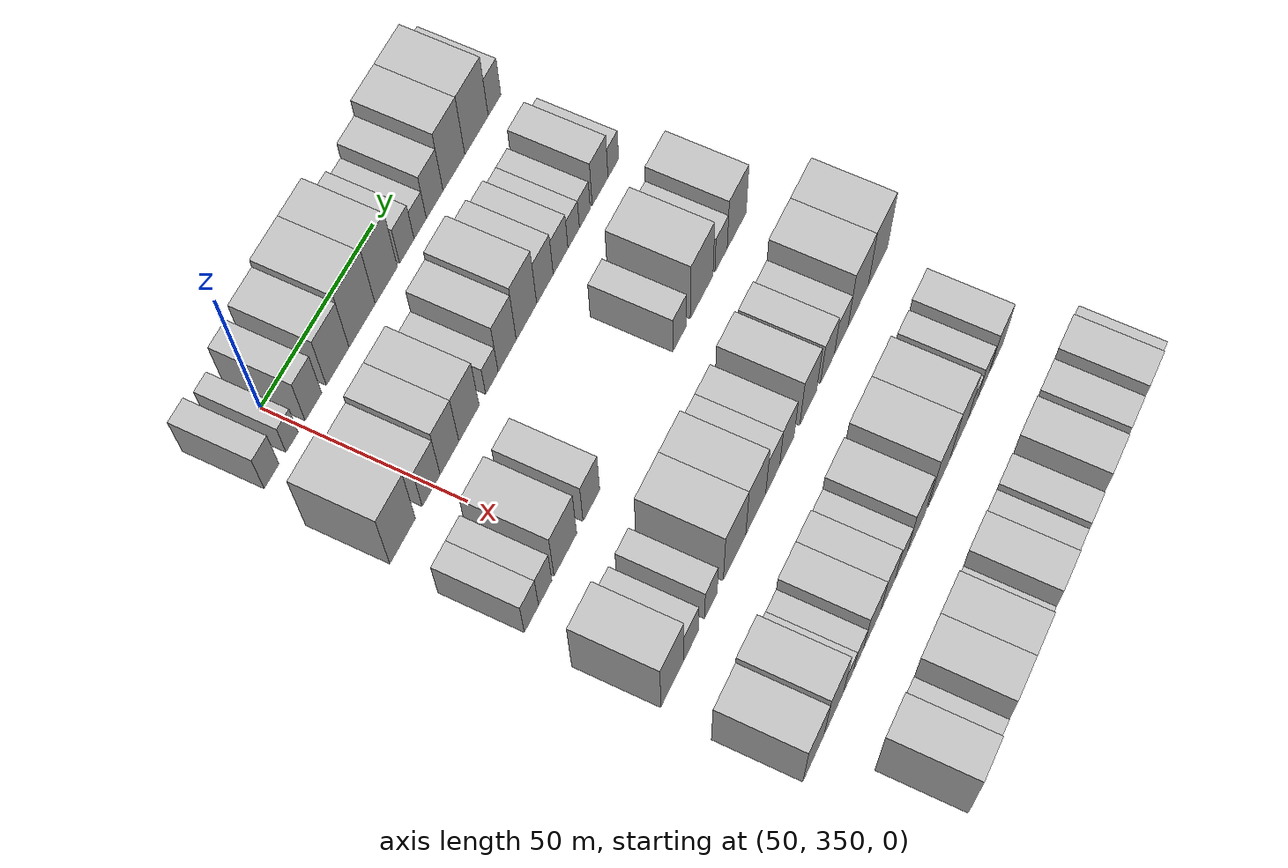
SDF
<sdf version="1.6">
 <world name="default">
  <model name="building_92">
   <static>1</static>
   <pose>50.0000 337.1911 0 0.000000 0.000000 0.000000</pose>
   <link name="link">
    <pose>0 0 7.50 0 0 0</pose>
    <collision name="collision"><geometry><box><size>20.0000 6.2257 15.0000</size></box></geometry></collision>
    <visual name="visual">
     <cast_shadows>0</cast_shadows>
     <geometry><box><size>20.0000 6.2257 15.0000</size></box></geometry>
     <material>
      <script>
       <uri>model://HANNAS_wall/materials/scripts</uri>
       <uri>model://HANNAS_wall/materials/textures</uri>
       <name>vrc/HANNAS_wall</name>
      </script>
     </material>
    </visual>
   </link>
  </model>
  <model name="building_93">
   <static>1</static>
   <pose>50.0000 345.8949 0 0.000000 0.000000 0.000000</pose>
   <link name="link">
    <pose>0 0 6.00 0 0 0</pose>
    <collision name="collision"><geometry><box><size>20.0000 5.1819 12.0000</size></box></geometry></collision>
    <visual name="visual">
     <cast_shadows>0</cast_shadows>
     <geometry><box><size>20.0000 5.1819 12.0000</size></box></geometry>
     <material>
      <script>
       <uri>model://HANNAS_wall/materials/scripts</uri>
       <uri>model://HANNAS_wall/materials/textures</uri>
       <name>vrc/HANNAS_wall</name>
      </script>
     </material>
    </visual>
   </link>
  </model>
  <model name="building_94">
   <static>1</static>
   <pose>50.0000 355.1025 0 0.000000 0.000000 0.000000</pose>
   <link name="link">
    <pose>0 0 9.00 0 0 0</pose>
    <collision name="collision"><geometry><box><size>20.0000 7.2333 18.0000</size></box></geometry></collision>
    <visual name="visual">
     <cast_shadows>0</cast_shadows>
     <geometry><box><size>20.0000 7.2333 18.0000</size></box></geometry>
     <material>
      <script>
       <uri>model://HANNAS_wall/materials/scripts</uri>
       <uri>model://HANNAS_wall/materials/textures</uri>
       <name>vrc/HANNAS_wall</name>
      </script>
     </material>
    </visual>
   </link>
  </model>
  <model name="building_95">
   <static>1</static>
   <pose>50.0000 365.7528 0 0.000000 0.000000 0.000000</pose>
   <link name="link">
    <pose>0 0 10.50 0 0 0</pose>
    <collision name="collision"><geometry><box><size>20.0000 10.0672 21.0000</size></box></geometry></collision>
    <visual name="visual">
     <cast_shadows>0</cast_shadows>
     <geometry><box><size>20.0000 10.0672 21.0000</size></box></geometry>
     <material>
      <script>
       <uri>model://HANNAS_wall/materials/scripts</uri>
       <uri>model://HANNAS_wall/materials/textures</uri>
       <name>vrc/HANNAS_wall</name>
      </script>
     </material>
    </visual>
   </link>
  </model>
  <model name="building_96">
   <static>1</static>
   <pose>50.0000 376.6771 0 0.000000 0.000000 0.000000</pose>
   <link name="link">
    <pose>0 0 12.00 0 0 0</pose>
    <collision name="collision"><geometry><box><size>20.0000 11.7815 24.0000</size></box></geometry></collision>
    <visual name="visual">
     <cast_shadows>0</cast_shadows>
     <geometry><box><size>20.0000 11.7815 24.0000</size></box></geometry>
     <material>
      <script>
       <uri>model://HANNAS_wall/materials/scripts</uri>
       <uri>model://HANNAS_wall/materials/textures</uri>
       <name>vrc/HANNAS_wall</name>
      </script>
     </material>
    </visual>
   </link>
  </model>
  <model name="building_97">
   <static>1</static>
   <pose>50.0000 387.6596 0 0.000000 0.000000 0.000000</pose>
   <link name="link">
    <pose>0 0 12.00 0 0 0</pose>
    <collision name="collision"><geometry><box><size>20.0000 10.1834 24.0000</size></box></geometry></collision>
    <visual name="visual">
     <cast_shadows>0</cast_shadows>
     <geometry><box><size>20.0000 10.1834 24.0000</size></box></geometry>
     <material>
      <script>
       <uri>model://HANNAS_wall/materials/scripts</uri>
       <uri>model://HANNAS_wall/materials/textures</uri>
       <name>vrc/HANNAS_wall</name>
      </script>
     </material>
    </visual>
   </link>
  </model>
  <model name="building_98">
   <static>1</static>
   <pose>50.0000 397.1289 0 0.000000 0.000000 0.000000</pose>
   <link name="link">
    <pose>0 0 7.50 0 0 0</pose>
    <collision name="collision"><geometry><box><size>20.0000 6.7551 15.0000</size></box></geometry></collision>
    <visual name="visual">
     <cast_shadows>0</cast_shadows>
     <geometry><box><size>20.0000 6.7551 15.0000</size></box></geometry>
     <material>
      <script>
       <uri>model://HANNAS_wall/materials/scripts</uri>
       <uri>model://HANNAS_wall/materials/textures</uri>
       <name>vrc/HANNAS_wall</name>
      </script>
     </material>
    </visual>
   </link>
  </model>
  <model name="building_99">
   <static>1</static>
   <pose>50.0000 403.3960 0 0.000000 0.000000 0.000000</pose>
   <link name="link">
    <pose>0 0 6.00 0 0 0</pose>
    <collision name="collision"><geometry><box><size>20.0000 5.7791 12.0000</size></box></geometry></collision>
    <visual name="visual">
     <cast_shadows>0</cast_shadows>
     <geometry><box><size>20.0000 5.7791 12.0000</size></box></geometry>
     <material>
      <script>
       <uri>model://HANNAS_wall/materials/scripts</uri>
       <uri>model://HANNAS_wall/materials/textures</uri>
       <name>vrc/HANNAS_wall</name>
      </script>
     </material>
    </visual>
   </link>
  </model>
  <model name="building_100">
   <static>1</static>
   <pose>50.0000 410.2564 0 0.000000 0.000000 0.000000</pose>
   <link name="link">
    <pose>0 0 9.00 0 0 0</pose>
    <collision name="collision"><geometry><box><size>20.0000 7.9417 18.0000</size></box></geometry></collision>
    <visual name="visual">
     <cast_shadows>0</cast_shadows>
     <geometry><box><size>20.0000 7.9417 18.0000</size></box></geometry>
     <material>
      <script>
       <uri>model://HANNAS_wall/materials/scripts</uri>
       <uri>model://HANNAS_wall/materials/textures</uri>
       <name>vrc/HANNAS_wall</name>
      </script>
     </material>
    </visual>
   </link>
  </model>
  <model name="building_101">
   <static>1</static>
   <pose>50.0000 419.4673 0 0.000000 0.000000 0.000000</pose>
   <link name="link">
    <pose>0 0 12.00 0 0 0</pose>
    <collision name="collision"><geometry><box><size>20.0000 10.4802 24.0000</size></box></geometry></collision>
    <visual name="visual">
     <cast_shadows>0</cast_shadows>
     <geometry><box><size>20.0000 10.4802 24.0000</size></box></geometry>
     <material>
      <script>
       <uri>model://HANNAS_wall/materials/scripts</uri>
       <uri>model://HANNAS_wall/materials/textures</uri>
       <name>vrc/HANNAS_wall</name>
      </script>
     </material>
    </visual>
   </link>
  </model>
  <model name="building_102">
   <static>1</static>
   <pose>50.0000 430.4455 0 0.000000 0.000000 0.000000</pose>
   <link name="link">
    <pose>0 0 12.00 0 0 0</pose>
    <collision name="collision"><geometry><box><size>20.0000 11.4763 24.0000</size></box></geometry></collision>
    <visual name="visual">
     <cast_shadows>0</cast_shadows>
     <geometry><box><size>20.0000 11.4763 24.0000</size></box></geometry>
     <material>
      <script>
       <uri>model://HANNAS_wall/materials/scripts</uri>
       <uri>model://HANNAS_wall/materials/textures</uri>
       <name>vrc/HANNAS_wall</name>
      </script>
     </material>
    </visual>
   </link>
  </model>
  <model name="building_103">
   <static>1</static>
   <pose>50.0000 439.3323 0 0.000000 0.000000 0.000000</pose>
   <link name="link">
    <pose>0 0 7.50 0 0 0</pose>
    <collision name="collision"><geometry><box><size>20.0000 6.2974 15.0000</size></box></geometry></collision>
    <visual name="visual">
     <cast_shadows>0</cast_shadows>
     <geometry><box><size>20.0000 6.2974 15.0000</size></box></geometry>
     <material>
      <script>
       <uri>model://HANNAS_wall/materials/scripts</uri>
       <uri>model://HANNAS_wall/materials/textures</uri>
       <name>vrc/HANNAS_wall</name>
      </script>
     </material>
    </visual>
   </link>
  </model>
  <model name="building_211">
   <static>1</static>
   <pose>82.0000 336.2199 0 0.000000 0.000000 0.000000</pose>
   <link name="link">
    <pose>0 0 12.00 0 0 0</pose>
    <collision name="collision"><geometry><box><size>20.0000 11.1903 24.0000</size></box></geometry></collision>
    <visual name="visual">
     <cast_shadows>0</cast_shadows>
     <geometry><box><size>20.0000 11.1903 24.0000</size></box></geometry>
     <material>
      <script>
       <uri>model://HANNAS_wall/materials/scripts</uri>
       <uri>model://HANNAS_wall/materials/textures</uri>
       <name>vrc/HANNAS_wall</name>
      </script>
     </material>
    </visual>
   </link>
  </model>
  <model name="building_212">
   <static>1</static>
   <pose>82.0000 348.8213 0 0.000000 0.000000 0.000000</pose>
   <link name="link">
    <pose>0 0 9.00 0 0 0</pose>
    <collision name="collision"><geometry><box><size>20.0000 8.0123 18.0000</size></box></geometry></collision>
    <visual name="visual">
     <cast_shadows>0</cast_shadows>
     <geometry><box><size>20.0000 8.0123 18.0000</size></box></geometry>
     <material>
      <script>
       <uri>model://HANNAS_wall/materials/scripts</uri>
       <uri>model://HANNAS_wall/materials/textures</uri>
       <name>vrc/HANNAS_wall</name>
      </script>
     </material>
    </visual>
   </link>
  </model>
  <model name="building_213">
   <static>1</static>
   <pose>82.0000 357.0579 0 0.000000 0.000000 0.000000</pose>
   <link name="link">
    <pose>0 0 10.50 0 0 0</pose>
    <collision name="collision"><geometry><box><size>20.0000 8.4610 21.0000</size></box></geometry></collision>
    <visual name="visual">
     <cast_shadows>0</cast_shadows>
     <geometry><box><size>20.0000 8.4610 21.0000</size></box></geometry>
     <material>
      <script>
       <uri>model://HANNAS_wall/materials/scripts</uri>
       <uri>model://HANNAS_wall/materials/textures</uri>
       <name>vrc/HANNAS_wall</name>
      </script>
     </material>
    </visual>
   </link>
  </model>
  <model name="building_214">
   <static>1</static>
   <pose>82.0000 365.9438 0 0.000000 0.000000 0.000000</pose>
   <link name="link">
    <pose>0 0 10.50 0 0 0</pose>
    <collision name="collision"><geometry><box><size>20.0000 9.3107 21.0000</size></box></geometry></collision>
    <visual name="visual">
     <cast_shadows>0</cast_shadows>
     <geometry><box><size>20.0000 9.3107 21.0000</size></box></geometry>
     <material>
      <script>
       <uri>model://HANNAS_wall/materials/scripts</uri>
       <uri>model://HANNAS_wall/materials/textures</uri>
       <name>vrc/HANNAS_wall</name>
      </script>
     </material>
    </visual>
   </link>
  </model>
  <model name="building_215">
   <static>1</static>
   <pose>82.0000 376.5196 0 0.000000 0.000000 0.000000</pose>
   <link name="link">
    <pose>0 0 6.00 0 0 0</pose>
    <collision name="collision"><geometry><box><size>20.0000 5.8410 12.0000</size></box></geometry></collision>
    <visual name="visual">
     <cast_shadows>0</cast_shadows>
     <geometry><box><size>20.0000 5.8410 12.0000</size></box></geometry>
     <material>
      <script>
       <uri>model://HANNAS_wall/materials/scripts</uri>
       <uri>model://HANNAS_wall/materials/textures</uri>
       <name>vrc/HANNAS_wall</name>
      </script>
     </material>
    </visual>
   </link>
  </model>
  <model name="building_216">
   <static>1</static>
   <pose>82.0000 383.7190 0 0.000000 0.000000 0.000000</pose>
   <link name="link">
    <pose>0 0 10.50 0 0 0</pose>
    <collision name="collision"><geometry><box><size>20.0000 8.5578 21.0000</size></box></geometry></collision>
    <visual name="visual">
     <cast_shadows>0</cast_shadows>
     <geometry><box><size>20.0000 8.5578 21.0000</size></box></geometry>
     <material>
      <script>
       <uri>model://HANNAS_wall/materials/scripts</uri>
       <uri>model://HANNAS_wall/materials/textures</uri>
       <name>vrc/HANNAS_wall</name>
      </script>
     </material>
    </visual>
   </link>
  </model>
  <model name="building_217">
   <static>1</static>
   <pose>82.0000 392.8994 0 0.000000 0.000000 0.000000</pose>
   <link name="link">
    <pose>0 0 12.00 0 0 0</pose>
    <collision name="collision"><geometry><box><size>20.0000 9.8030 24.0000</size></box></geometry></collision>
    <visual name="visual">
     <cast_shadows>0</cast_shadows>
     <geometry><box><size>20.0000 9.8030 24.0000</size></box></geometry>
     <material>
      <script>
       <uri>model://HANNAS_wall/materials/scripts</uri>
       <uri>model://HANNAS_wall/materials/textures</uri>
       <name>vrc/HANNAS_wall</name>
      </script>
     </material>
    </visual>
   </link>
  </model>
  <model name="building_218">
   <static>1</static>
   <pose>82.0000 401.8268 0 0.000000 0.000000 0.000000</pose>
   <link name="link">
    <pose>0 0 9.00 0 0 0</pose>
    <collision name="collision"><geometry><box><size>20.0000 8.0518 18.0000</size></box></geometry></collision>
    <visual name="visual">
     <cast_shadows>0</cast_shadows>
     <geometry><box><size>20.0000 8.0518 18.0000</size></box></geometry>
     <material>
      <script>
       <uri>model://HANNAS_wall/materials/scripts</uri>
       <uri>model://HANNAS_wall/materials/textures</uri>
       <name>vrc/HANNAS_wall</name>
      </script>
     </material>
    </visual>
   </link>
  </model>
  <model name="building_219">
   <static>1</static>
   <pose>82.0000 409.4884 0 0.000000 0.000000 0.000000</pose>
   <link name="link">
    <pose>0 0 7.50 0 0 0</pose>
    <collision name="collision"><geometry><box><size>20.0000 7.2715 15.0000</size></box></geometry></collision>
    <visual name="visual">
     <cast_shadows>0</cast_shadows>
     <geometry><box><size>20.0000 7.2715 15.0000</size></box></geometry>
     <material>
      <script>
       <uri>model://HANNAS_wall/materials/scripts</uri>
       <uri>model://HANNAS_wall/materials/textures</uri>
       <name>vrc/HANNAS_wall</name>
      </script>
     </material>
    </visual>
   </link>
  </model>
  <model name="building_220">
   <static>1</static>
   <pose>82.0000 415.9773 0 0.000000 0.000000 0.000000</pose>
   <link name="link">
    <pose>0 0 6.00 0 0 0</pose>
    <collision name="collision"><geometry><box><size>20.0000 5.7064 12.0000</size></box></geometry></collision>
    <visual name="visual">
     <cast_shadows>0</cast_shadows>
     <geometry><box><size>20.0000 5.7064 12.0000</size></box></geometry>
     <material>
      <script>
       <uri>model://HANNAS_wall/materials/scripts</uri>
       <uri>model://HANNAS_wall/materials/textures</uri>
       <name>vrc/HANNAS_wall</name>
      </script>
     </material>
    </visual>
   </link>
  </model>
  <model name="building_221">
   <static>1</static>
   <pose>82.0000 421.5415 0 0.000000 0.000000 0.000000</pose>
   <link name="link">
    <pose>0 0 6.00 0 0 0</pose>
    <collision name="collision"><geometry><box><size>20.0000 5.4222 12.0000</size></box></geometry></collision>
    <visual name="visual">
     <cast_shadows>0</cast_shadows>
     <geometry><box><size>20.0000 5.4222 12.0000</size></box></geometry>
     <material>
      <script>
       <uri>model://HANNAS_wall/materials/scripts</uri>
       <uri>model://HANNAS_wall/materials/textures</uri>
       <name>vrc/HANNAS_wall</name>
      </script>
     </material>
    </visual>
   </link>
  </model>
  <model name="building_222">
   <static>1</static>
   <pose>82.0000 429.2566 0 0.000000 0.000000 0.000000</pose>
   <link name="link">
    <pose>0 0 9.00 0 0 0</pose>
    <collision name="collision"><geometry><box><size>20.0000 8.0080 18.0000</size></box></geometry></collision>
    <visual name="visual">
     <cast_shadows>0</cast_shadows>
     <geometry><box><size>20.0000 8.0080 18.0000</size></box></geometry>
     <material>
      <script>
       <uri>model://HANNAS_wall/materials/scripts</uri>
       <uri>model://HANNAS_wall/materials/textures</uri>
       <name>vrc/HANNAS_wall</name>
      </script>
     </material>
    </visual>
   </link>
  </model>
  <model name="building_223">
   <static>1</static>
   <pose>82.0000 435.9839 0 0.000000 0.000000 0.000000</pose>
   <link name="link">
    <pose>0 0 6.00 0 0 0</pose>
    <collision name="collision"><geometry><box><size>20.0000 5.4465 12.0000</size></box></geometry></collision>
    <visual name="visual">
     <cast_shadows>0</cast_shadows>
     <geometry><box><size>20.0000 5.4465 12.0000</size></box></geometry>
     <material>
      <script>
       <uri>model://HANNAS_wall/materials/scripts</uri>
       <uri>model://HANNAS_wall/materials/textures</uri>
       <name>vrc/HANNAS_wall</name>
      </script>
     </material>
    </visual>
   </link>
  </model>
  <model name="building_332">
   <static>1</static>
   <pose>114.0000 332.5439 0 0.000000 0.000000 0.000000</pose>
   <link name="link">
    <pose>0 0 7.50 0 0 0</pose>
    <collision name="collision"><geometry><box><size>20.0000 6.3924 15.0000</size></box></geometry></collision>
    <visual name="visual">
     <cast_shadows>0</cast_shadows>
     <geometry><box><size>20.0000 6.3924 15.0000</size></box></geometry>
     <material>
      <script>
       <uri>model://HANNAS_wall/materials/scripts</uri>
       <uri>model://HANNAS_wall/materials/textures</uri>
       <name>vrc/HANNAS_wall</name>
      </script>
     </material>
    </visual>
   </link>
  </model>
  <model name="building_333">
   <static>1</static>
   <pose>114.0000 338.7719 0 0.000000 0.000000 0.000000</pose>
   <link name="link">
    <pose>0 0 7.50 0 0 0</pose>
    <collision name="collision"><geometry><box><size>20.0000 6.0636 15.0000</size></box></geometry></collision>
    <visual name="visual">
     <cast_shadows>0</cast_shadows>
     <geometry><box><size>20.0000 6.0636 15.0000</size></box></geometry>
     <material>
      <script>
       <uri>model://HANNAS_wall/materials/scripts</uri>
       <uri>model://HANNAS_wall/materials/textures</uri>
       <name>vrc/HANNAS_wall</name>
      </script>
     </material>
    </visual>
   </link>
  </model>
  <model name="building_334">
   <static>1</static>
   <pose>114.0000 348.0428 0 0.000000 0.000000 0.000000</pose>
   <link name="link">
    <pose>0 0 10.50 0 0 0</pose>
    <collision name="collision"><geometry><box><size>20.0000 10.4782 21.0000</size></box></geometry></collision>
    <visual name="visual">
     <cast_shadows>0</cast_shadows>
     <geometry><box><size>20.0000 10.4782 21.0000</size></box></geometry>
     <material>
      <script>
       <uri>model://HANNAS_wall/materials/scripts</uri>
       <uri>model://HANNAS_wall/materials/textures</uri>
       <name>vrc/HANNAS_wall</name>
      </script>
     </material>
    </visual>
   </link>
  </model>
  <model name="building_335">
   <static>1</static>
   <pose>114.0000 360.2075 0 0.000000 0.000000 0.000000</pose>
   <link name="link">
    <pose>0 0 9.00 0 0 0</pose>
    <collision name="collision"><geometry><box><size>20.0000 7.8513 18.0000</size></box></geometry></collision>
    <visual name="visual">
     <cast_shadows>0</cast_shadows>
     <geometry><box><size>20.0000 7.8513 18.0000</size></box></geometry>
     <material>
      <script>
       <uri>model://HANNAS_wall/materials/scripts</uri>
       <uri>model://HANNAS_wall/materials/textures</uri>
       <name>vrc/HANNAS_wall</name>
      </script>
     </material>
    </visual>
   </link>
  </model>
  <model name="building_336">
   <static>1</static>
   <pose>114.0000 403.4622 0 0.000000 0.000000 0.000000</pose>
   <link name="link">
    <pose>0 0 7.50 0 0 0</pose>
    <collision name="collision"><geometry><box><size>20.0000 6.8860 15.0000</size></box></geometry></collision>
    <visual name="visual">
     <cast_shadows>0</cast_shadows>
     <geometry><box><size>20.0000 6.8860 15.0000</size></box></geometry>
     <material>
      <script>
       <uri>model://HANNAS_wall/materials/scripts</uri>
       <uri>model://HANNAS_wall/materials/textures</uri>
       <name>vrc/HANNAS_wall</name>
      </script>
     </material>
    </visual>
   </link>
  </model>
  <model name="building_337">
   <static>1</static>
   <pose>114.0000 414.8015 0 0.000000 0.000000 0.000000</pose>
   <link name="link">
    <pose>0 0 12.00 0 0 0</pose>
    <collision name="collision"><geometry><box><size>20.0000 11.7925 24.0000</size></box></geometry></collision>
    <visual name="visual">
     <cast_shadows>0</cast_shadows>
     <geometry><box><size>20.0000 11.7925 24.0000</size></box></geometry>
     <material>
      <script>
       <uri>model://HANNAS_wall/materials/scripts</uri>
       <uri>model://HANNAS_wall/materials/textures</uri>
       <name>vrc/HANNAS_wall</name>
      </script>
     </material>
    </visual>
   </link>
  </model>
  <model name="building_338">
   <static>1</static>
   <pose>114.0000 424.9403 0 0.000000 0.000000 0.000000</pose>
   <link name="link">
    <pose>0 0 7.50 0 0 0</pose>
    <collision name="collision"><geometry><box><size>20.0000 6.4851 15.0000</size></box></geometry></collision>
    <visual name="visual">
     <cast_shadows>0</cast_shadows>
     <geometry><box><size>20.0000 6.4851 15.0000</size></box></geometry>
     <material>
      <script>
       <uri>model://HANNAS_wall/materials/scripts</uri>
       <uri>model://HANNAS_wall/materials/textures</uri>
       <name>vrc/HANNAS_wall</name>
      </script>
     </material>
    </visual>
   </link>
  </model>
  <model name="building_339">
   <static>1</static>
   <pose>114.0000 433.2203 0 0.000000 0.000000 0.000000</pose>
   <link name="link">
    <pose>0 0 10.50 0 0 0</pose>
    <collision name="collision"><geometry><box><size>20.0000 10.0749 21.0000</size></box></geometry></collision>
    <visual name="visual">
     <cast_shadows>0</cast_shadows>
     <geometry><box><size>20.0000 10.0749 21.0000</size></box></geometry>
     <material>
      <script>
       <uri>model://HANNAS_wall/materials/scripts</uri>
       <uri>model://HANNAS_wall/materials/textures</uri>
       <name>vrc/HANNAS_wall</name>
      </script>
     </material>
    </visual>
   </link>
  </model>
  <model name="building_437">
   <static>1</static>
   <pose>146.0000 332.3808 0 0.000000 0.000000 0.000000</pose>
   <link name="link">
    <pose>0 0 12.00 0 0 0</pose>
    <collision name="collision"><geometry><box><size>20.0000 10.7488 24.0000</size></box></geometry></collision>
    <visual name="visual">
     <cast_shadows>0</cast_shadows>
     <geometry><box><size>20.0000 10.7488 24.0000</size></box></geometry>
     <material>
      <script>
       <uri>model://HANNAS_wall/materials/scripts</uri>
       <uri>model://HANNAS_wall/materials/textures</uri>
       <name>vrc/HANNAS_wall</name>
      </script>
     </material>
    </visual>
   </link>
  </model>
  <model name="building_438">
   <static>1</static>
   <pose>146.0000 341.2756 0 0.000000 0.000000 0.000000</pose>
   <link name="link">
    <pose>0 0 7.50 0 0 0</pose>
    <collision name="collision"><geometry><box><size>20.0000 7.0407 15.0000</size></box></geometry></collision>
    <visual name="visual">
     <cast_shadows>0</cast_shadows>
     <geometry><box><size>20.0000 7.0407 15.0000</size></box></geometry>
     <material>
      <script>
       <uri>model://HANNAS_wall/materials/scripts</uri>
       <uri>model://HANNAS_wall/materials/textures</uri>
       <name>vrc/HANNAS_wall</name>
      </script>
     </material>
    </visual>
   </link>
  </model>
  <model name="building_439">
   <static>1</static>
   <pose>146.0000 350.8760 0 0.000000 0.000000 0.000000</pose>
   <link name="link">
    <pose>0 0 7.50 0 0 0</pose>
    <collision name="collision"><geometry><box><size>20.0000 6.1600 15.0000</size></box></geometry></collision>
    <visual name="visual">
     <cast_shadows>0</cast_shadows>
     <geometry><box><size>20.0000 6.1600 15.0000</size></box></geometry>
     <material>
      <script>
       <uri>model://HANNAS_wall/materials/scripts</uri>
       <uri>model://HANNAS_wall/materials/textures</uri>
       <name>vrc/HANNAS_wall</name>
      </script>
     </material>
    </visual>
   </link>
  </model>
  <model name="building_440">
   <static>1</static>
   <pose>146.0000 362.5293 0 0.000000 0.000000 0.000000</pose>
   <link name="link">
    <pose>0 0 12.00 0 0 0</pose>
    <collision name="collision"><geometry><box><size>20.0000 11.1467 24.0000</size></box></geometry></collision>
    <visual name="visual">
     <cast_shadows>0</cast_shadows>
     <geometry><box><size>20.0000 11.1467 24.0000</size></box></geometry>
     <material>
      <script>
       <uri>model://HANNAS_wall/materials/scripts</uri>
       <uri>model://HANNAS_wall/materials/textures</uri>
       <name>vrc/HANNAS_wall</name>
      </script>
     </material>
    </visual>
   </link>
  </model>
  <model name="building_441">
   <static>1</static>
   <pose>146.0000 373.1391 0 0.000000 0.000000 0.000000</pose>
   <link name="link">
    <pose>0 0 12.00 0 0 0</pose>
    <collision name="collision"><geometry><box><size>20.0000 10.0728 24.0000</size></box></geometry></collision>
    <visual name="visual">
     <cast_shadows>0</cast_shadows>
     <geometry><box><size>20.0000 10.0728 24.0000</size></box></geometry>
     <material>
      <script>
       <uri>model://HANNAS_wall/materials/scripts</uri>
       <uri>model://HANNAS_wall/materials/textures</uri>
       <name>vrc/HANNAS_wall</name>
      </script>
     </material>
    </visual>
   </link>
  </model>
  <model name="building_442">
   <static>1</static>
   <pose>146.0000 381.7833 0 0.000000 0.000000 0.000000</pose>
   <link name="link">
    <pose>0 0 9.00 0 0 0</pose>
    <collision name="collision"><geometry><box><size>20.0000 7.2156 18.0000</size></box></geometry></collision>
    <visual name="visual">
     <cast_shadows>0</cast_shadows>
     <geometry><box><size>20.0000 7.2156 18.0000</size></box></geometry>
     <material>
      <script>
       <uri>model://HANNAS_wall/materials/scripts</uri>
       <uri>model://HANNAS_wall/materials/textures</uri>
       <name>vrc/HANNAS_wall</name>
      </script>
     </material>
    </visual>
   </link>
  </model>
  <model name="building_443">
   <static>1</static>
   <pose>146.0000 389.1158 0 0.000000 0.000000 0.000000</pose>
   <link name="link">
    <pose>0 0 9.00 0 0 0</pose>
    <collision name="collision"><geometry><box><size>20.0000 7.4495 18.0000</size></box></geometry></collision>
    <visual name="visual">
     <cast_shadows>0</cast_shadows>
     <geometry><box><size>20.0000 7.4495 18.0000</size></box></geometry>
     <material>
      <script>
       <uri>model://HANNAS_wall/materials/scripts</uri>
       <uri>model://HANNAS_wall/materials/textures</uri>
       <name>vrc/HANNAS_wall</name>
      </script>
     </material>
    </visual>
   </link>
  </model>
  <model name="building_444">
   <static>1</static>
   <pose>146.0000 400.3117 0 0.000000 0.000000 0.000000</pose>
   <link name="link">
    <pose>0 0 10.50 0 0 0</pose>
    <collision name="collision"><geometry><box><size>20.0000 8.9422 21.0000</size></box></geometry></collision>
    <visual name="visual">
     <cast_shadows>0</cast_shadows>
     <geometry><box><size>20.0000 8.9422 21.0000</size></box></geometry>
     <material>
      <script>
       <uri>model://HANNAS_wall/materials/scripts</uri>
       <uri>model://HANNAS_wall/materials/textures</uri>
       <name>vrc/HANNAS_wall</name>
      </script>
     </material>
    </visual>
   </link>
  </model>
  <model name="building_445">
   <static>1</static>
   <pose>146.0000 410.5336 0 0.000000 0.000000 0.000000</pose>
   <link name="link">
    <pose>0 0 9.00 0 0 0</pose>
    <collision name="collision"><geometry><box><size>20.0000 7.5016 18.0000</size></box></geometry></collision>
    <visual name="visual">
     <cast_shadows>0</cast_shadows>
     <geometry><box><size>20.0000 7.5016 18.0000</size></box></geometry>
     <material>
      <script>
       <uri>model://HANNAS_wall/materials/scripts</uri>
       <uri>model://HANNAS_wall/materials/textures</uri>
       <name>vrc/HANNAS_wall</name>
      </script>
     </material>
    </visual>
   </link>
  </model>
  <model name="building_446">
   <static>1</static>
   <pose>146.0000 418.0282 0 0.000000 0.000000 0.000000</pose>
   <link name="link">
    <pose>0 0 7.50 0 0 0</pose>
    <collision name="collision"><geometry><box><size>20.0000 7.4878 15.0000</size></box></geometry></collision>
    <visual name="visual">
     <cast_shadows>0</cast_shadows>
     <geometry><box><size>20.0000 7.4878 15.0000</size></box></geometry>
     <material>
      <script>
       <uri>model://HANNAS_wall/materials/scripts</uri>
       <uri>model://HANNAS_wall/materials/textures</uri>
       <name>vrc/HANNAS_wall</name>
      </script>
     </material>
    </visual>
   </link>
  </model>
  <model name="building_447">
   <static>1</static>
   <pose>146.0000 427.3502 0 0.000000 0.000000 0.000000</pose>
   <link name="link">
    <pose>0 0 12.00 0 0 0</pose>
    <collision name="collision"><geometry><box><size>20.0000 11.1561 24.0000</size></box></geometry></collision>
    <visual name="visual">
     <cast_shadows>0</cast_shadows>
     <geometry><box><size>20.0000 11.1561 24.0000</size></box></geometry>
     <material>
      <script>
       <uri>model://HANNAS_wall/materials/scripts</uri>
       <uri>model://HANNAS_wall/materials/textures</uri>
       <name>vrc/HANNAS_wall</name>
      </script>
     </material>
    </visual>
   </link>
  </model>
  <model name="building_448">
   <static>1</static>
   <pose>146.0000 438.4106 0 0.000000 0.000000 0.000000</pose>
   <link name="link">
    <pose>0 0 12.00 0 0 0</pose>
    <collision name="collision"><geometry><box><size>20.0000 10.9647 24.0000</size></box></geometry></collision>
    <visual name="visual">
     <cast_shadows>0</cast_shadows>
     <geometry><box><size>20.0000 10.9647 24.0000</size></box></geometry>
     <material>
      <script>
       <uri>model://HANNAS_wall/materials/scripts</uri>
       <uri>model://HANNAS_wall/materials/textures</uri>
       <name>vrc/HANNAS_wall</name>
      </script>
     </material>
    </visual>
   </link>
  </model>
  <model name="building_561">
   <static>1</static>
   <pose>178.0000 330.5567 0 0.000000 0.000000 0.000000</pose>
   <link name="link">
    <pose>0 0 10.50 0 0 0</pose>
    <collision name="collision"><geometry><box><size>20.0000 10.3497 21.0000</size></box></geometry></collision>
    <visual name="visual">
     <cast_shadows>0</cast_shadows>
     <geometry><box><size>20.0000 10.3497 21.0000</size></box></geometry>
     <material>
      <script>
       <uri>model://HANNAS_wall/materials/scripts</uri>
       <uri>model://HANNAS_wall/materials/textures</uri>
       <name>vrc/HANNAS_wall</name>
      </script>
     </material>
    </visual>
   </link>
  </model>
  <model name="building_562">
   <static>1</static>
   <pose>178.0000 340.5836 0 0.000000 0.000000 0.000000</pose>
   <link name="link">
    <pose>0 0 12.00 0 0 0</pose>
    <collision name="collision"><geometry><box><size>20.0000 9.7041 24.0000</size></box></geometry></collision>
    <visual name="visual">
     <cast_shadows>0</cast_shadows>
     <geometry><box><size>20.0000 9.7041 24.0000</size></box></geometry>
     <material>
      <script>
       <uri>model://HANNAS_wall/materials/scripts</uri>
       <uri>model://HANNAS_wall/materials/textures</uri>
       <name>vrc/HANNAS_wall</name>
      </script>
     </material>
    </visual>
   </link>
  </model>
  <model name="building_563">
   <static>1</static>
   <pose>178.0000 348.0537 0 0.000000 0.000000 0.000000</pose>
   <link name="link">
    <pose>0 0 6.00 0 0 0</pose>
    <collision name="collision"><geometry><box><size>20.0000 5.2360 12.0000</size></box></geometry></collision>
    <visual name="visual">
     <cast_shadows>0</cast_shadows>
     <geometry><box><size>20.0000 5.2360 12.0000</size></box></geometry>
     <material>
      <script>
       <uri>model://HANNAS_wall/materials/scripts</uri>
       <uri>model://HANNAS_wall/materials/textures</uri>
       <name>vrc/HANNAS_wall</name>
      </script>
     </material>
    </visual>
   </link>
  </model>
  <model name="building_564">
   <static>1</static>
   <pose>178.0000 353.2667 0 0.000000 0.000000 0.000000</pose>
   <link name="link">
    <pose>0 0 6.00 0 0 0</pose>
    <collision name="collision"><geometry><box><size>20.0000 5.1900 12.0000</size></box></geometry></collision>
    <visual name="visual">
     <cast_shadows>0</cast_shadows>
     <geometry><box><size>20.0000 5.1900 12.0000</size></box></geometry>
     <material>
      <script>
       <uri>model://HANNAS_wall/materials/scripts</uri>
       <uri>model://HANNAS_wall/materials/textures</uri>
       <name>vrc/HANNAS_wall</name>
      </script>
     </material>
    </visual>
   </link>
  </model>
  <model name="building_565">
   <static>1</static>
   <pose>178.0000 360.2597 0 0.000000 0.000000 0.000000</pose>
   <link name="link">
    <pose>0 0 9.00 0 0 0</pose>
    <collision name="collision"><geometry><box><size>20.0000 8.7960 18.0000</size></box></geometry></collision>
    <visual name="visual">
     <cast_shadows>0</cast_shadows>
     <geometry><box><size>20.0000 8.7960 18.0000</size></box></geometry>
     <material>
      <script>
       <uri>model://HANNAS_wall/materials/scripts</uri>
       <uri>model://HANNAS_wall/materials/textures</uri>
       <name>vrc/HANNAS_wall</name>
      </script>
     </material>
    </visual>
   </link>
  </model>
  <model name="building_566">
   <static>1</static>
   <pose>178.0000 368.3968 0 0.000000 0.000000 0.000000</pose>
   <link name="link">
    <pose>0 0 9.00 0 0 0</pose>
    <collision name="collision"><geometry><box><size>20.0000 7.4781 18.0000</size></box></geometry></collision>
    <visual name="visual">
     <cast_shadows>0</cast_shadows>
     <geometry><box><size>20.0000 7.4781 18.0000</size></box></geometry>
     <material>
      <script>
       <uri>model://HANNAS_wall/materials/scripts</uri>
       <uri>model://HANNAS_wall/materials/textures</uri>
       <name>vrc/HANNAS_wall</name>
      </script>
     </material>
    </visual>
   </link>
  </model>
  <model name="building_567">
   <static>1</static>
   <pose>178.0000 375.3505 0 0.000000 0.000000 0.000000</pose>
   <link name="link">
    <pose>0 0 7.50 0 0 0</pose>
    <collision name="collision"><geometry><box><size>20.0000 6.4294 15.0000</size></box></geometry></collision>
    <visual name="visual">
     <cast_shadows>0</cast_shadows>
     <geometry><box><size>20.0000 6.4294 15.0000</size></box></geometry>
     <material>
      <script>
       <uri>model://HANNAS_wall/materials/scripts</uri>
       <uri>model://HANNAS_wall/materials/textures</uri>
       <name>vrc/HANNAS_wall</name>
      </script>
     </material>
    </visual>
   </link>
  </model>
  <model name="building_568">
   <static>1</static>
   <pose>178.0000 383.4460 0 0.000000 0.000000 0.000000</pose>
   <link name="link">
    <pose>0 0 10.50 0 0 0</pose>
    <collision name="collision"><geometry><box><size>20.0000 9.7616 21.0000</size></box></geometry></collision>
    <visual name="visual">
     <cast_shadows>0</cast_shadows>
     <geometry><box><size>20.0000 9.7616 21.0000</size></box></geometry>
     <material>
      <script>
       <uri>model://HANNAS_wall/materials/scripts</uri>
       <uri>model://HANNAS_wall/materials/textures</uri>
       <name>vrc/HANNAS_wall</name>
      </script>
     </material>
    </visual>
   </link>
  </model>
  <model name="building_569">
   <static>1</static>
   <pose>178.0000 396.1203 0 0.000000 0.000000 0.000000</pose>
   <link name="link">
    <pose>0 0 12.00 0 0 0</pose>
    <collision name="collision"><geometry><box><size>20.0000 11.5870 24.0000</size></box></geometry></collision>
    <visual name="visual">
     <cast_shadows>0</cast_shadows>
     <geometry><box><size>20.0000 11.5870 24.0000</size></box></geometry>
     <material>
      <script>
       <uri>model://HANNAS_wall/materials/scripts</uri>
       <uri>model://HANNAS_wall/materials/textures</uri>
       <name>vrc/HANNAS_wall</name>
      </script>
     </material>
    </visual>
   </link>
  </model>
  <model name="building_570">
   <static>1</static>
   <pose>178.0000 406.9429 0 0.000000 0.000000 0.000000</pose>
   <link name="link">
    <pose>0 0 12.00 0 0 0</pose>
    <collision name="collision"><geometry><box><size>20.0000 10.0582 24.0000</size></box></geometry></collision>
    <visual name="visual">
     <cast_shadows>0</cast_shadows>
     <geometry><box><size>20.0000 10.0582 24.0000</size></box></geometry>
     <material>
      <script>
       <uri>model://HANNAS_wall/materials/scripts</uri>
       <uri>model://HANNAS_wall/materials/textures</uri>
       <name>vrc/HANNAS_wall</name>
      </script>
     </material>
    </visual>
   </link>
  </model>
  <model name="building_571">
   <static>1</static>
   <pose>178.0000 414.7850 0 0.000000 0.000000 0.000000</pose>
   <link name="link">
    <pose>0 0 6.00 0 0 0</pose>
    <collision name="collision"><geometry><box><size>20.0000 5.6261 12.0000</size></box></geometry></collision>
    <visual name="visual">
     <cast_shadows>0</cast_shadows>
     <geometry><box><size>20.0000 5.6261 12.0000</size></box></geometry>
     <material>
      <script>
       <uri>model://HANNAS_wall/materials/scripts</uri>
       <uri>model://HANNAS_wall/materials/textures</uri>
       <name>vrc/HANNAS_wall</name>
      </script>
     </material>
    </visual>
   </link>
  </model>
  <model name="building_572">
   <static>1</static>
   <pose>178.0000 420.6633 0 0.000000 0.000000 0.000000</pose>
   <link name="link">
    <pose>0 0 7.50 0 0 0</pose>
    <collision name="collision"><geometry><box><size>20.0000 6.1305 15.0000</size></box></geometry></collision>
    <visual name="visual">
     <cast_shadows>0</cast_shadows>
     <geometry><box><size>20.0000 6.1305 15.0000</size></box></geometry>
     <material>
      <script>
       <uri>model://HANNAS_wall/materials/scripts</uri>
       <uri>model://HANNAS_wall/materials/textures</uri>
       <name>vrc/HANNAS_wall</name>
      </script>
     </material>
    </visual>
   </link>
  </model>
  <model name="building_573">
   <static>1</static>
   <pose>178.0000 428.8691 0 0.000000 0.000000 0.000000</pose>
   <link name="link">
    <pose>0 0 9.00 0 0 0</pose>
    <collision name="collision"><geometry><box><size>20.0000 8.2811 18.0000</size></box></geometry></collision>
    <visual name="visual">
     <cast_shadows>0</cast_shadows>
     <geometry><box><size>20.0000 8.2811 18.0000</size></box></geometry>
     <material>
      <script>
       <uri>model://HANNAS_wall/materials/scripts</uri>
       <uri>model://HANNAS_wall/materials/textures</uri>
       <name>vrc/HANNAS_wall</name>
      </script>
     </material>
    </visual>
   </link>
  </model>
  <model name="building_676">
   <static>1</static>
   <pose>210.0000 338.5437 0 0.000000 0.000000 0.000000</pose>
   <link name="link">
    <pose>0 0 12.00 0 0 0</pose>
    <collision name="collision"><geometry><box><size>20.0000 9.7930 24.0000</size></box></geometry></collision>
    <visual name="visual">
     <cast_shadows>0</cast_shadows>
     <geometry><box><size>20.0000 9.7930 24.0000</size></box></geometry>
     <material>
      <script>
       <uri>model://HANNAS_wall/materials/scripts</uri>
       <uri>model://HANNAS_wall/materials/textures</uri>
       <name>vrc/HANNAS_wall</name>
      </script>
     </material>
    </visual>
   </link>
  </model>
  <model name="building_677">
   <static>1</static>
   <pose>210.0000 346.6725 0 0.000000 0.000000 0.000000</pose>
   <link name="link">
    <pose>0 0 7.50 0 0 0</pose>
    <collision name="collision"><geometry><box><size>20.0000 6.4647 15.0000</size></box></geometry></collision>
    <visual name="visual">
     <cast_shadows>0</cast_shadows>
     <geometry><box><size>20.0000 6.4647 15.0000</size></box></geometry>
     <material>
      <script>
       <uri>model://HANNAS_wall/materials/scripts</uri>
       <uri>model://HANNAS_wall/materials/textures</uri>
       <name>vrc/HANNAS_wall</name>
      </script>
     </material>
    </visual>
   </link>
  </model>
  <model name="building_678">
   <static>1</static>
   <pose>210.0000 355.9358 0 0.000000 0.000000 0.000000</pose>
   <link name="link">
    <pose>0 0 12.00 0 0 0</pose>
    <collision name="collision"><geometry><box><size>20.0000 10.0620 24.0000</size></box></geometry></collision>
    <visual name="visual">
     <cast_shadows>0</cast_shadows>
     <geometry><box><size>20.0000 10.0620 24.0000</size></box></geometry>
     <material>
      <script>
       <uri>model://HANNAS_wall/materials/scripts</uri>
       <uri>model://HANNAS_wall/materials/textures</uri>
       <name>vrc/HANNAS_wall</name>
      </script>
     </material>
    </visual>
   </link>
  </model>
  <model name="building_679">
   <static>1</static>
   <pose>210.0000 365.7970 0 0.000000 0.000000 0.000000</pose>
   <link name="link">
    <pose>0 0 12.00 0 0 0</pose>
    <collision name="collision"><geometry><box><size>20.0000 9.6604 24.0000</size></box></geometry></collision>
    <visual name="visual">
     <cast_shadows>0</cast_shadows>
     <geometry><box><size>20.0000 9.6604 24.0000</size></box></geometry>
     <material>
      <script>
       <uri>model://HANNAS_wall/materials/scripts</uri>
       <uri>model://HANNAS_wall/materials/textures</uri>
       <name>vrc/HANNAS_wall</name>
      </script>
     </material>
    </visual>
   </link>
  </model>
  <model name="building_680">
   <static>1</static>
   <pose>210.0000 373.5839 0 0.000000 0.000000 0.000000</pose>
   <link name="link">
    <pose>0 0 6.00 0 0 0</pose>
    <collision name="collision"><geometry><box><size>20.0000 5.9133 12.0000</size></box></geometry></collision>
    <visual name="visual">
     <cast_shadows>0</cast_shadows>
     <geometry><box><size>20.0000 5.9133 12.0000</size></box></geometry>
     <material>
      <script>
       <uri>model://HANNAS_wall/materials/scripts</uri>
       <uri>model://HANNAS_wall/materials/textures</uri>
       <name>vrc/HANNAS_wall</name>
      </script>
     </material>
    </visual>
   </link>
  </model>
  <model name="building_681">
   <static>1</static>
   <pose>210.0000 381.2392 0 0.000000 0.000000 0.000000</pose>
   <link name="link">
    <pose>0 0 10.50 0 0 0</pose>
    <collision name="collision"><geometry><box><size>20.0000 9.3974 21.0000</size></box></geometry></collision>
    <visual name="visual">
     <cast_shadows>0</cast_shadows>
     <geometry><box><size>20.0000 9.3974 21.0000</size></box></geometry>
     <material>
      <script>
       <uri>model://HANNAS_wall/materials/scripts</uri>
       <uri>model://HANNAS_wall/materials/textures</uri>
       <name>vrc/HANNAS_wall</name>
      </script>
     </material>
    </visual>
   </link>
  </model>
  <model name="building_682">
   <static>1</static>
   <pose>210.0000 390.2872 0 0.000000 0.000000 0.000000</pose>
   <link name="link">
    <pose>0 0 7.50 0 0 0</pose>
    <collision name="collision"><geometry><box><size>20.0000 6.6986 15.0000</size></box></geometry></collision>
    <visual name="visual">
     <cast_shadows>0</cast_shadows>
     <geometry><box><size>20.0000 6.6986 15.0000</size></box></geometry>
     <material>
      <script>
       <uri>model://HANNAS_wall/materials/scripts</uri>
       <uri>model://HANNAS_wall/materials/textures</uri>
       <name>vrc/HANNAS_wall</name>
      </script>
     </material>
    </visual>
   </link>
  </model>
  <model name="building_683">
   <static>1</static>
   <pose>210.0000 397.3703 0 0.000000 0.000000 0.000000</pose>
   <link name="link">
    <pose>0 0 9.00 0 0 0</pose>
    <collision name="collision"><geometry><box><size>20.0000 7.4676 18.0000</size></box></geometry></collision>
    <visual name="visual">
     <cast_shadows>0</cast_shadows>
     <geometry><box><size>20.0000 7.4676 18.0000</size></box></geometry>
     <material>
      <script>
       <uri>model://HANNAS_wall/materials/scripts</uri>
       <uri>model://HANNAS_wall/materials/textures</uri>
       <name>vrc/HANNAS_wall</name>
      </script>
     </material>
    </visual>
   </link>
  </model>
  <model name="building_684">
   <static>1</static>
   <pose>210.0000 408.9276 0 0.000000 0.000000 0.000000</pose>
   <link name="link">
    <pose>0 0 10.50 0 0 0</pose>
    <collision name="collision"><geometry><box><size>20.0000 9.6469 21.0000</size></box></geometry></collision>
    <visual name="visual">
     <cast_shadows>0</cast_shadows>
     <geometry><box><size>20.0000 9.6469 21.0000</size></box></geometry>
     <material>
      <script>
       <uri>model://HANNAS_wall/materials/scripts</uri>
       <uri>model://HANNAS_wall/materials/textures</uri>
       <name>vrc/HANNAS_wall</name>
      </script>
     </material>
    </visual>
   </link>
  </model>
  <model name="building_685">
   <static>1</static>
   <pose>210.0000 420.7110 0 0.000000 0.000000 0.000000</pose>
   <link name="link">
    <pose>0 0 9.00 0 0 0</pose>
    <collision name="collision"><geometry><box><size>20.0000 7.9200 18.0000</size></box></geometry></collision>
    <visual name="visual">
     <cast_shadows>0</cast_shadows>
     <geometry><box><size>20.0000 7.9200 18.0000</size></box></geometry>
     <material>
      <script>
       <uri>model://HANNAS_wall/materials/scripts</uri>
       <uri>model://HANNAS_wall/materials/textures</uri>
       <name>vrc/HANNAS_wall</name>
      </script>
     </material>
    </visual>
   </link>
  </model>
  <model name="building_686">
   <static>1</static>
   <pose>210.0000 430.0800 0 0.000000 0.000000 0.000000</pose>
   <link name="link">
    <pose>0 0 10.50 0 0 0</pose>
    <collision name="collision"><geometry><box><size>20.0000 8.8179 21.0000</size></box></geometry></collision>
    <visual name="visual">
     <cast_shadows>0</cast_shadows>
     <geometry><box><size>20.0000 8.8179 21.0000</size></box></geometry>
     <material>
      <script>
       <uri>model://HANNAS_wall/materials/scripts</uri>
       <uri>model://HANNAS_wall/materials/textures</uri>
       <name>vrc/HANNAS_wall</name>
      </script>
     </material>
    </visual>
   </link>
  </model>
  <model name="building_687">
   <static>1</static>
   <pose>210.0000 439.1372 0 0.000000 0.000000 0.000000</pose>
   <link name="link">
    <pose>0 0 6.00 0 0 0</pose>
    <collision name="collision"><geometry><box><size>20.0000 5.2967 12.0000</size></box></geometry></collision>
    <visual name="visual">
     <cast_shadows>0</cast_shadows>
     <geometry><box><size>20.0000 5.2967 12.0000</size></box></geometry>
     <material>
      <script>
       <uri>model://HANNAS_wall/materials/scripts</uri>
       <uri>model://HANNAS_wall/materials/textures</uri>
       <name>vrc/HANNAS_wall</name>
      </script>
     </material>
    </visual>
   </link>
  </model>
 </world>
</sdf>
